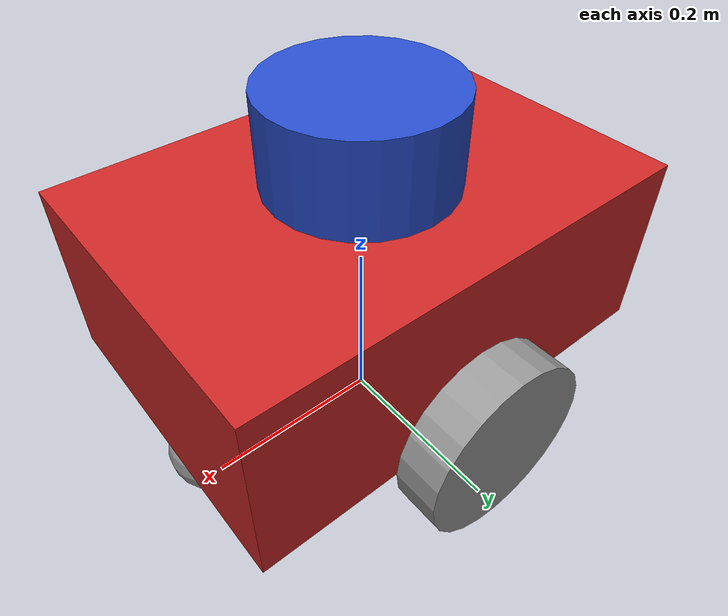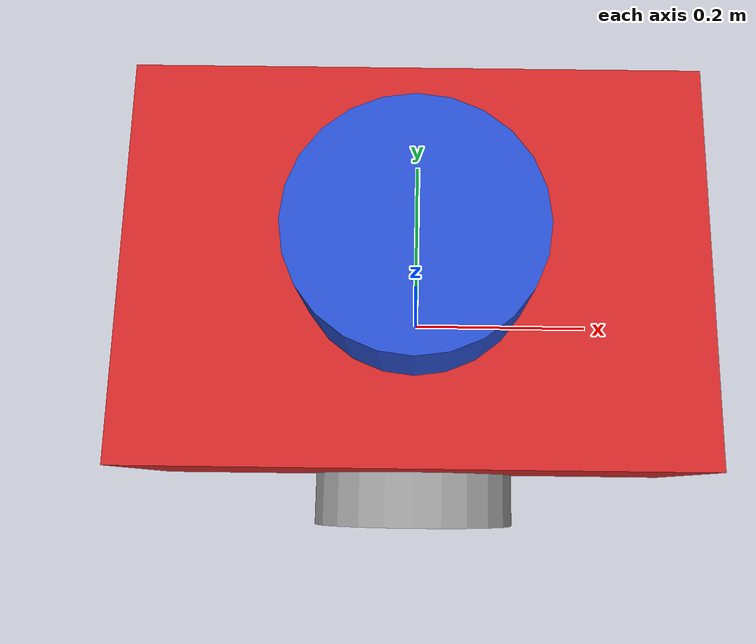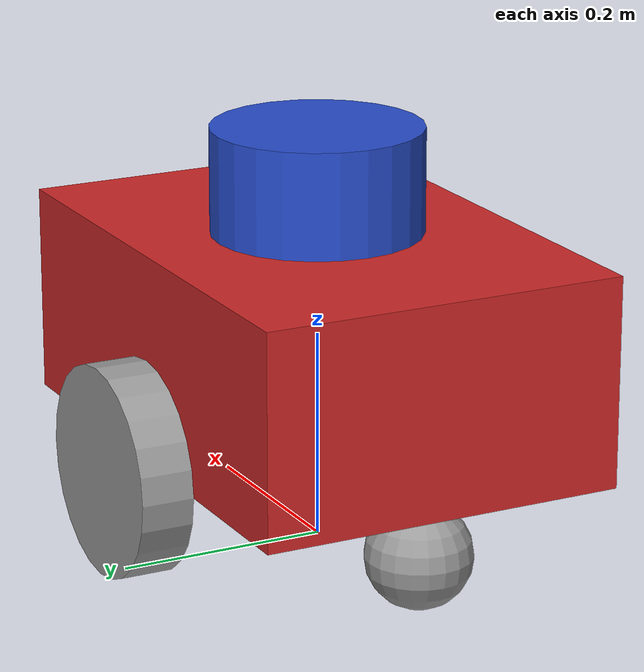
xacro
<?xml version="1.0"?>
<robot name="atom" xmlns:xacro="http://www.ros.org/wiki/xacro">

    <xacro:include filename="common_properties.xacro"/>
    <xacro:include filename="robot_base.xacro"/>
    <xacro:include filename="robot_gazebo.xacro" />
    <xacro:include filename="lidar.xacro"/>
    <xacro:include filename="robot_ros2_control.xacro"/>

</robot>

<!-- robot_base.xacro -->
<robot xmlns:xacro="http://www.ros.org/wiki/xacro">

    <xacro:property name="length" value="0.5" />
    <xacro:property name="width" value="0.35" />
    <xacro:property name="height" value="0.2" />

    <xacro:property name="mass" value="5.0" />

    <xacro:property name="wheel_mass" value="1.0" />

    <xacro:property name="wheel_radius" value="0.1" />
    <xacro:property name="wheel_width" value="0.05" />
    <xacro:property name="caster_wheel_radius" value="0.05" />

    <link name="base_link">
        <visual>
            <geometry>
                <box size="${length} ${width} ${height}" />
            </geometry>
            <origin xyz="0.0 0.0 ${height/2}" rpy="0.0 0.0 0.0" />
            <material name="red" />
        </visual>
        <xacro:box_inertia m="${mass}" x="${length}" y="${width}" z="${height}"
            o_xyz="0.0 0.0 ${height/2}" o_rpy="0.0 0.0 0.0" />
        <collision>
            <geometry>
                <box size="${length} ${width} ${height}" />
            </geometry>
            <origin xyz="0.0 0.0 ${height/2}" rpy="0.0 0.0 0.0" />
        </collision>
    </link>

    <link name="left_wheel">
        <visual>
            <geometry>
                <cylinder radius="${wheel_radius}" length="${wheel_width}" />
            </geometry>
            <origin xyz="0.0 0.0 0.0" rpy="${pi/2} 0.0 0.0" />
            <material name="grey" />
        </visual>
        <xacro:cylinder_inertia m="${wheel_mass}" r="${wheel_radius}" l="${wheel_width}"
            o_xyz="0.0 0.0 0.0" o_rpy="${pi/2} 0.0 0.0" />
        <collision>
            <geometry>
                <cylinder radius="${wheel_radius}" length="${wheel_width}" />
            </geometry>
            <origin xyz="0.0 0.0 0.0" rpy="${pi/2} 0.0 0.0" />
        </collision>
    </link>

    <link name="right_wheel">
        <visual>
            <geometry>
                <cylinder radius="${wheel_radius}" length="${wheel_width}" />
            </geometry>
            <origin xyz="0.0 0.0 0.0" rpy="${pi/2} 0.0 0.0" />
            <material name="grey" />
        </visual>
        <xacro:cylinder_inertia m="${wheel_mass}" r="${wheel_radius}" l="${wheel_width}"
            o_xyz="0.0 0.0 0.0" o_rpy="${pi/2} 0.0 0.0" />
        <collision>
            <geometry>
                <cylinder radius="${wheel_radius}" length="${wheel_width}" />
            </geometry>
            <origin xyz="0.0 0.0 0.0" rpy="${pi/2} 0.0 0.0" />
        </collision>
    </link>
    <link name="caster_wheel_link_front">
        <visual>
            <geometry>
                <sphere radius="${caster_wheel_radius}" />
            </geometry>
            <origin xyz="0.0 0.0 0.0" rpy="0.0 0.0 0.0" />
            <material name="grey" />
        </visual>
        <xacro:sphere_inertia m="0.5" r="${caster_wheel_radius}" o_xyz="0.0 0.0 0.0"
            o_rpy="0.0 0.0 0.0" />
        <collision>
            <geometry>
                <sphere radius="${caster_wheel_radius}" />
            </geometry>
            <origin xyz="0.0 0.0 0.0" rpy="0.0 0.0 0.0" />
            <material name="grey" />
        </collision>
    </link>

    <link name="caster_wheel_link_back">
        <visual>
            <geometry>
                <sphere radius="${caster_wheel_radius}" />
            </geometry>
            <origin xyz="0.0 0.0 0.0" rpy="0.0 0.0 0.0" />
            <material name="grey" />
        </visual>
        <xacro:sphere_inertia m="0.5" r="${caster_wheel_radius}" o_xyz="0.0 0.0 0.0"
            o_rpy="0.0 0.0 0.0" />
        <collision>
            <geometry>
                <sphere radius="${caster_wheel_radius}" />
            </geometry>
            <origin xyz="0.0 0.0 0.0" rpy="0.0 0.0 0.0" />
            <material name="grey" />
        </collision>
    </link>

    <link name="base_footprint"></link>

    <joint name="base_joint" type="fixed">
        <parent link="base_footprint" />
        <child link="base_link" />
        <origin xyz="0.0 0.0 ${height/2}" rpy="0.0 0.0 0.0" />
    </joint>

    <!-- Left wheel joint - centered at robot length axis for better kinematics -->
    <joint name="left_wheel_joint" type="continuous">
        <parent link="base_link" />
        <child link="left_wheel" />
        <origin xyz="0.0 ${(width/2) + (wheel_width/2)} 0.0" rpy="0.0 0.0 0.0" />
        <axis xyz="0.0 1.0 0.0" />
    </joint>

    <!-- Right wheel joint - centered at robot length axis for better kinematics -->
    <joint name="right_wheel_joint" type="continuous">
        <parent link="base_link" />
        <child link="right_wheel" />
        <origin xyz="0.0 ${-((width/2) + (wheel_width/2))} 0.0" rpy="0.0 0.0 0.0" />
        <axis xyz="0.0 1.0 0.0" />
    </joint>

    <!-- Front caster wheel joint -->
    <joint name="caster_wheel_joint_front" type="fixed">
        <parent link="base_link" />
        <child link="caster_wheel_link_front" />
        <origin xyz="${(length/2) - 0.05} 0.0 ${-(caster_wheel_radius)}" rpy="0.0 0.0 0.0" />
    </joint>

    <!-- Back caster wheel joint -->
    <joint name="caster_wheel_joint_back" type="fixed">
        <parent link="base_link" />
        <child link="caster_wheel_link_back" />
        <origin xyz="${-(length/2) + 0.05} 0.0 ${-(caster_wheel_radius)}" rpy="0.0 0.0 0.0" />
    </joint>

    <!-- Gazebo plugins and materials -->
    <gazebo reference="base_link">
        <material>Gazebo/Red</material>
    </gazebo>

</robot>

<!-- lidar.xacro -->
<robot xmlns:xacro="http://www.ros.org/wiki/xacro">

    <xacro:property name="lidar_radius" value="0.1"/>
    <xacro:property name="lidar_length" value="0.1"/>

    <link name="lidar_link">
        <visual>
            <geometry>
                <cylinder radius="${lidar_radius}" length="${lidar_length}"/>
            </geometry>
            <origin xyz="0 0 0" rpy="0.0 0.0 0.0"/>
            <material name="blue"/>
        </visual>
        <collision>
            <geometry>
                    <cylinder radius="${lidar_radius}" length="${lidar_length}"/>
            </geometry>
        </collision>
        <xacro:cylinder_inertia m="0.1" r="${lidar_radius}" l="${lidar_length}"
                                o_xyz="0 0 0" o_rpy="0 0 0"/>
    </link>
    <joint name="laser_joint" type="fixed">
        <parent link="base_link"/>
        <child link="lidar_link"/>
        <origin xyz="0.0 0.0 ${height + (lidar_length/2)}" rpy="0.0 0.0 0.0"/>
    </joint>

</robot>
